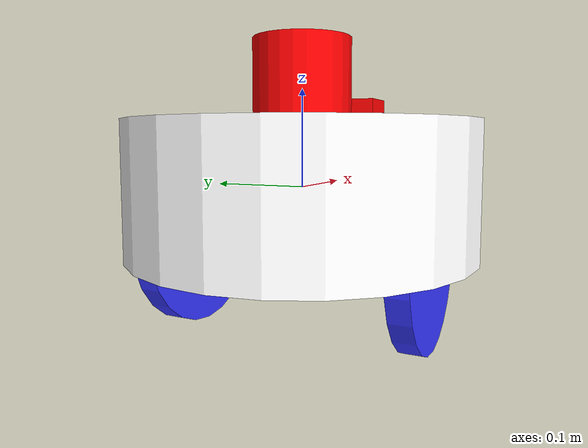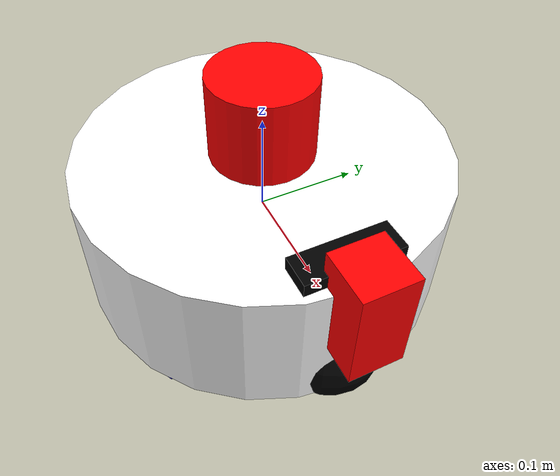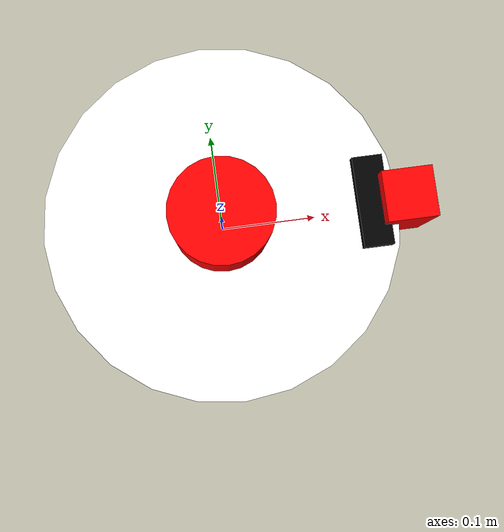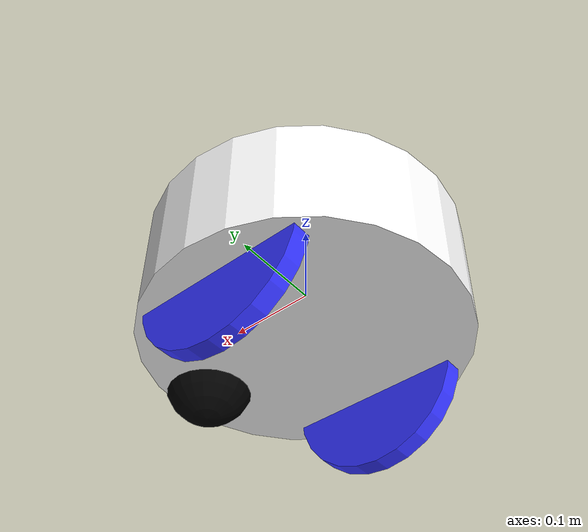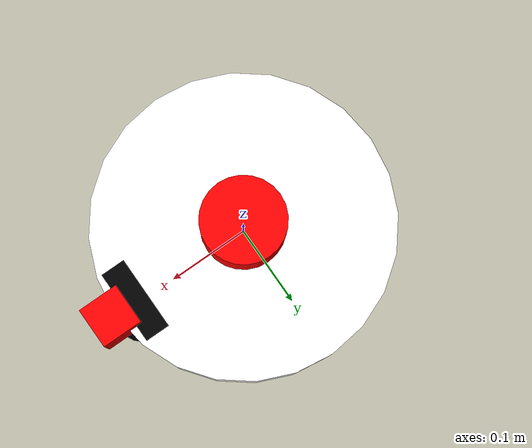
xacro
<?xml version="1.0"?>
<robot xmlns:xacro="http://www.ros.org/wiki/xacro" name="robot">

  <xacro:include filename="$(find my_bot)/description/robot_core.xacro"/>
  <xacro:include filename="$(find my_bot)/description/gazebo_control.xacro"/>
  <xacro:include filename="$(find my_bot)/description/lidar.xacro"/>
  <xacro:include filename="$(find my_bot)/description/camera.xacro"/>
  <xacro:include filename="$(find my_bot)/description/depth_camera.xacro"/>
</robot>

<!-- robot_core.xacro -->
<robot xmlns:xacro="http://www.ros.org/wiki/xacro" >

    <xacro:include filename="inertial_macros.xacro"/>

    <material name="white">
        <color rgba="1 1 1 1" />
    </material>

    <material name="orange">
        <color rgba="1 0.3 0.1 1" />
    </material>

    <material name="blue">
        <color rgba="0.2 0.2 1 1" />
    </material>

    <material name="black">
        <color rgba="0 0 0 1" />
    </material>

     <material name="red">
        <color rgba="1 0 0 1" />
    </material>

    <!-- base_footprint link -->
    <link name="base_footprint"/>

    <joint name="base_footprint_joint" type="fixed">
        <parent link="base_footprint"/>
        <child link="base_link"/>
        <origin xyz="0 0 0" rpy="0 0 0"/>
    </joint>

    <!-- base link -->
    <link name="base_link">
    </link>

    <!-- chassis link -->
    <joint name="chassis_joint" type="fixed">
        <parent link="base_link"/>
        <child link="chassis"/>
        <origin xyz="0 0 0" rpy="0 0 0"/>
    </joint>

    <link name="chassis">
        <visual>
            <origin xyz="0 0 0" rpy="0 0 0"/>
            <geometry>
                <cylinder radius="0.1778" length="0.136"/>
            </geometry>
            <material name="white"/>
        </visual>
        <collision>
            <origin xyz="0 0 0" rpy="0 0 0"/>
            <geometry>
                <cylinder radius="0.1778" length="0.136"/>
            </geometry>
        </collision>
        <xacro:inertial_cylinder mass="1.0" length="0.136" radius="0.1778">
            <origin xyz="0 0 0" rpy="0 0 0"/>
        </xacro:inertial_cylinder>
    </link>

    <gazebo reference="chassis">
        <material>Gazebo/White</material>
    </gazebo>

    <!-- left wheel link -->
    <joint name="left_wheel_joint" type="continuous">
        <parent link="base_link"/>
        <child link="left_wheel"/>
        <origin xyz="0 0.127 -0.0508" rpy="0 0 0"/>
        <axis xyz="0 1 0"/>
    </joint>

    <link name="left_wheel">
        <visual>
            <origin rpy="-${pi/2} 0 0"/>
            <geometry>
                <cylinder radius="0.1016" length="0.0211"/>
            </geometry>
            <material name="blue"/>
        </visual>
        <collision>
            <origin rpy="-${pi/2} 0 0"/>
            <geometry>
                <cylinder radius="0.1016" length="0.0211"/>
            </geometry>
        </collision>
        <xacro:inertial_cylinder mass="0.5" length="0.0211" radius="0.1016">
            <origin xyz="0 0 0" rpy="0 0 0"/>
        </xacro:inertial_cylinder>
    </link>

    <gazebo reference="left_wheel">
        <material>Gazebo/Blue</material>
    </gazebo>

    <!-- right wheel link -->
    <joint name="right_wheel_joint" type="continuous">
        <parent link="base_link"/>
        <child link="right_wheel"/>
        <origin xyz="0 -0.127 -0.0508" rpy="0 0 0"/>
        <axis xyz="0 1 0"/>
    </joint>

    <link name="right_wheel">
        <visual>
            <origin rpy="${pi/2} 0 0"/>
            <geometry>
                <cylinder radius="0.1016" length="0.0211"/>
            </geometry>
            <material name="blue"/>
        </visual>
        <collision>
            <origin rpy="${pi/2} 0 0"/>
            <geometry>
                <cylinder radius="0.1016" length="0.0211"/>
            </geometry>
        </collision>
        <xacro:inertial_cylinder mass="0.5" length="0.0211" radius="0.1016">
            <origin xyz="0 0 0" rpy="0 0 0"/>
        </xacro:inertial_cylinder>
    </link>

    <gazebo reference="right_wheel">
        <material>Gazebo/Blue</material>
    </gazebo>

    <!-- caster wheel link -->
    <joint name="caster_wheel_joint" type="fixed">
        <parent link="chassis"/>
        <child link="caster_wheel"/>
        <origin xyz="0.1397 0 -0.0508"/>
    </joint>

    <link name="caster_wheel">
        <visual>
            <geometry>
                <sphere radius="0.05"/>
            </geometry>
            <material name="black"/>
        </visual>
        <collision>
            <geometry>
                <sphere radius="0.05"/>
            </geometry>
        </collision>
        <xacro:inertial_sphere mass="0.2" radius="0.05">
            <origin xyz="0 0 0" rpy="0 0 0"/>
        </xacro:inertial_sphere>
    </link>

    <gazebo reference="caster_wheel">
        <material>Gazebo/Black</material>
    </gazebo>

</robot>

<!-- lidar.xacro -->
<robot xmlns:xacro="http://www.ros.org/wiki/xacro" >

    <joint name="lidar_joint" type="fixed">
        <parent link="chassis"/>
        <child link="lidar_frame"/>
        <origin xyz="0 0 0.1" rpy="0 0 0"/>
    </joint>

    <link name="lidar_frame">
        <visual>
            <origin xyz="0 0 0"/>
            <geometry>
                <cylinder radius="0.05" length="0.1"/>
            </geometry>
            <material name="red"/>
        </visual>
        <collision>
            <origin xyz="0 0 0"/>
            <geometry>
                <cylinder radius="0.05" length="0.1"/>
            </geometry>
        </collision>
        <xacro:inertial_cylinder mass="0.5" length="0.1" radius="0.05">
            <origin xyz="0 0 0" rpy="0 0 0"/>
        </xacro:inertial_cylinder>
    </link>

    <gazebo reference="lidar_frame">
        <material>Gazebo/Red</material>

        <sensor name="laser" type="gpu_lidar">
            <pose>0 0 0 0 0 0</pose>
            <visualize>true</visualize>
            <always_on>true</always_on>
            <update_rate>10</update_rate>
            <topic>scan</topic>
            <gz_frame_id>lidar_frame</gz_frame_id>
            <ray>
                <scan>
                    <horizontal>
                        <samples>360</samples>
                        <resolution>1</resolution>
                        <min_angle>-3.14</min_angle>
                        <max_angle>3.14</max_angle>
                    </horizontal>
                </scan>
                <range>
                    <min>0.3</min>
                    <max>12.0</max>
                </range>
            </ray>
        </sensor>
    </gazebo>

</robot>

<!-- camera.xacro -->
<robot xmlns:xacro="http://www.ros.org/wiki/xacro" >

    <joint name="camera_joint" type="fixed">
        <parent link="chassis"/>
        <child link="camera_link"/>
        <origin xyz="0.183 0 0.05" rpy="0 0 0"/>
    </joint>

    <link name="camera_link">
        <visual>
            <origin xyz="0 0 0"/>
            <geometry>
                <box size="0.05 0.05 0.1"/>
            </geometry>
            <material name="red"/>
        </visual>
        <collision>
            <origin xyz="0 0 0"/>
            <geometry>
                <box size="0.05 0.05 0.1"/>
            </geometry>
        </collision>
        <inertial>
            <mass value="0.05"/>
            <origin xyz="0 0 0"/>
            <inertia ixx="1e-5" ixy="0" ixz="0" iyy="1e-5" iyz="0" izz="1e-5"/>
        </inertial>
    </link>

    <joint name="camera_optical_joint" type="fixed">
        <parent link="camera_link"/>
        <child link="camera_link_optical"/>
        <origin xyz="0 0 0" rpy="${-pi/2} 0 ${-pi/2}"/>
    </joint>

    <link name="camera_link_optical"/>

    <gazebo reference="camera_link">
        <material>Gazebo/Red</material>

        <sensor name="camera" type="camera">
            <pose>0 0 0 0 0 0</pose>
            <visualize>true</visualize>
            <always_on>true</always_on>
            <update_rate>10</update_rate>
            <topic>camera/image_raw</topic>
            <gz_frame_id>camera_link_optical</gz_frame_id>
            <camera>
                <horizontal_fov>1.5708</horizontal_fov>
                <image>
                    <width>640</width>
                    <height>480</height>
                    <format>R8G8B8</format>
                </image>
                <clip>
                    <near>0.1</near>
                    <far>100.0</far>
                </clip>
            </camera>
        </sensor>
    </gazebo>

</robot>

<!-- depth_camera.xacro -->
<robot xmlns:xacro="http://www.ros.org/wiki/xacro" >

    <joint name="depth_camera_joint" type="fixed">
        <parent link="chassis"/>
        <child link="depth_camera_link"/>
        <origin xyz="0.15 0 0.068" rpy="0 0 0"/>
    </joint>

    <link name="depth_camera_link">
        <visual>
            <origin xyz="0 0 0"/>
            <geometry>
                <box size="0.03 0.09 0.025"/>
            </geometry>
            <material name="black"/>
        </visual>
        <collision>
            <origin xyz="0 0 0"/>
            <geometry>
                <box size="0.03 0.09 0.025"/>
            </geometry>
        </collision>
        <inertial>
            <mass value="0.061"/>
            <origin xyz="0 0 0"/>
            <inertia ixx="1e-5" ixy="0" ixz="0" iyy="1e-5" iyz="0" izz="1e-5"/>
        </inertial>
    </link>

    <!-- Standard ROS optical frame -->
    <joint name="depth_camera_optical_joint" type="fixed">
        <parent link="depth_camera_link"/>
        <child link="depth_camera_link_optical"/>
        <origin xyz="0 0 0" rpy="${-pi/2} 0 ${-pi/2}"/>
    </joint>

    <link name="depth_camera_link_optical"/>

    <gazebo reference="depth_camera_link">
        <material>Gazebo/Black</material>

        <sensor name="depth_camera" type="depth_camera">
            <pose>0 0 0 0 0 0</pose>
            <visualize>true</visualize>
            <always_on>true</always_on>
            <update_rate>6</update_rate>
            <topic>depth_camera</topic>
            <gz_frame_id>depth_camera_link_optical</gz_frame_id>
            <camera>
                <horizontal_fov>1.274</horizontal_fov>
                <image>
                    <width>640</width>
                    <height>480</height>
                    <format>R8G8B8</format>
                </image>
                <clip>
                    <near>0.2</near>
                    <far>9.0</far>
                </clip>
                <depth_camera>
                    <clip>
                        <near>0.2</near>
                        <far>9.0</far>
                    </clip>
                </depth_camera>
            </camera>
        </sensor>
    </gazebo>

</robot>
